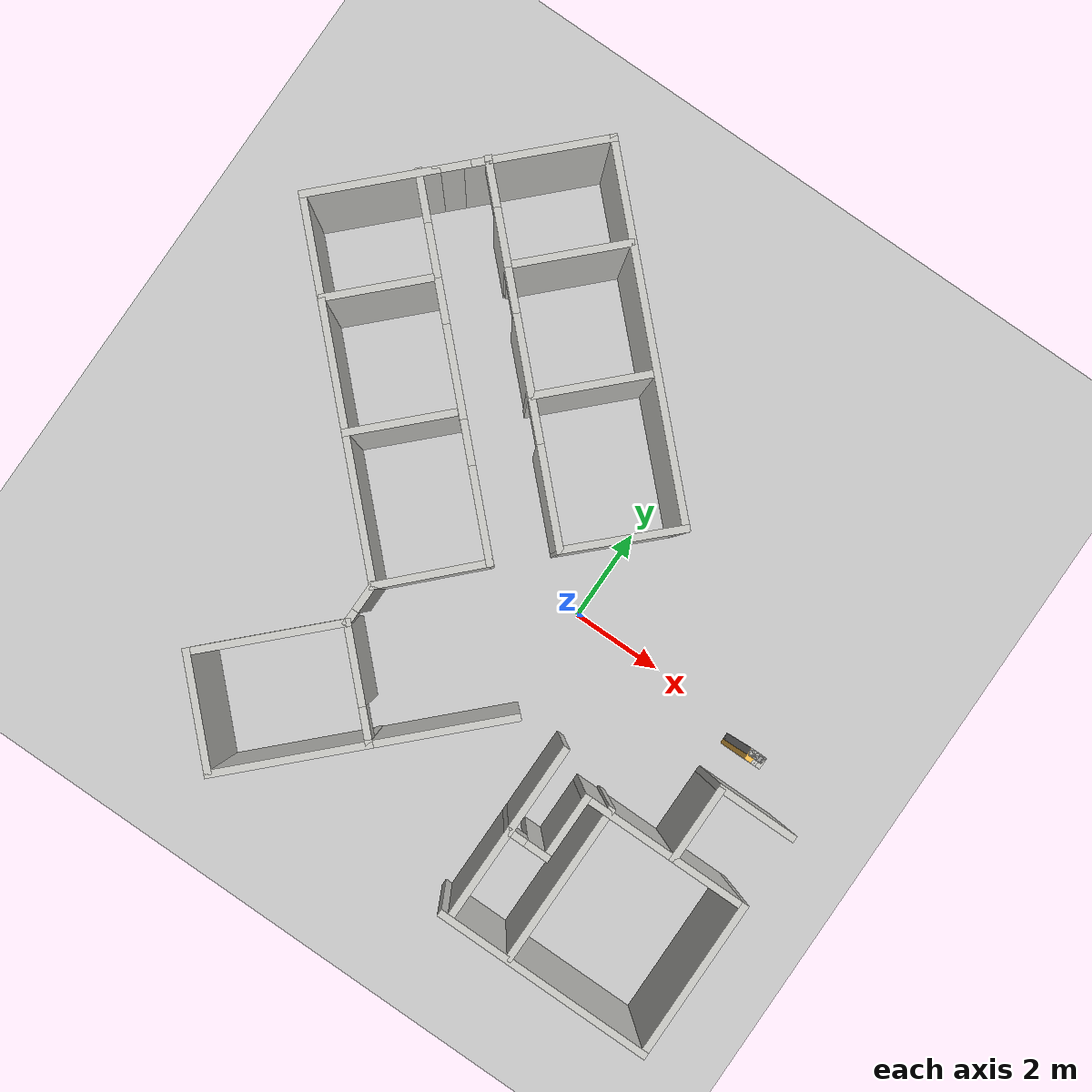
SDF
<sdf version="1.7">
 <world name="default">
  <model name="ground_plane">
   <static>1</static>
   <link name="link">
    <collision name="collision">
     <geometry><plane><normal>0 0 1</normal><size>100 100</size></plane></geometry>
     <surface>
      <contact><collide_bitmask>65535</collide_bitmask></contact>
      <friction><ode><mu>100</mu><mu2>50</mu2></ode></friction>
     </surface>
    </collision>
    <visual name="visual">
     <cast_shadows>0</cast_shadows>
     <geometry><plane><normal>0 0 1</normal><size>100 100</size></plane></geometry>
     <material>
      <script><uri>file://media/materials/scripts/gazebo.material</uri><name>Gazebo/Grey</name></script>
     </material>
    </visual>
   </link>
  </model>
  <model name="SUST_IICT">
   <pose>8.32781 0.748146 0 0 -0 0</pose>
   <link name="Wall_100">
    <collision name="Wall_100_Collision">
     <geometry><box><size>2.5 0.15 2.5</size></box></geometry>
     <pose>0 0 1.25 0 -0 0</pose>
    </collision>
    <visual name="Wall_100_Visual">
     <pose>0 0 1.25 0 -0 0</pose>
     <geometry><box><size>2.5 0.15 2.5</size></box></geometry>
     <material>
      <script><uri>file://media/materials/scripts/gazebo.material</uri><name>Gazebo/CeilingTiled</name></script>
      <ambient>1 0.764706 0.305882 1</ambient>
     </material>
     <meta><layer>0</layer></meta>
    </visual>
    <pose>-13.3631 -6.43541 0 0 -0 2.35619</pose>
   </link>
   <link name="Wall_102">
    <collision name="Wall_102_Collision">
     <geometry><box><size>3.25 0.15 2.5</size></box></geometry>
     <pose>0 0 1.25 0 -0 0</pose>
    </collision>
    <visual name="Wall_102_Visual">
     <pose>0 0 1.25 0 -0 0</pose>
     <geometry><box><size>3.25 0.15 2.5</size></box></geometry>
     <material>
      <script><uri>file://media/materials/scripts/gazebo.material</uri><name>Gazebo/CeilingTiled</name></script>
      <ambient>1 0.764706 0.305882 1</ambient>
     </material>
     <meta><layer>0</layer></meta>
    </visual>
    <pose>-13.098 -4.50854 0 0 -0 0.785398</pose>
   </link>
   <link name="Wall_118">
    <collision name="Wall_118_Collision">
     <geometry><box><size>4.75 0.15 2.5</size></box></geometry>
     <pose>0 0 1.25 0 -0 0</pose>
    </collision>
    <visual name="Wall_118_Visual">
     <pose>0 0 1.25 0 -0 0</pose>
     <geometry><box><size>4.75 0.15 2.5</size></box></geometry>
     <material>
      <script><uri>file://media/materials/scripts/gazebo.material</uri><name>Gazebo/CeilingTiled</name></script>
      <ambient>1 0.764706 0.305882 1</ambient>
     </material>
     <meta><layer>0</layer></meta>
    </visual>
    <pose>-5.075 -6.90897 0 0 -0 3.14159</pose>
   </link>
   <link name="Wall_128">
    <collision name="Wall_128_Collision">
     <geometry><box><size>2 0.15 2.5</size></box></geometry>
     <pose>0 0 1.25 0 -0 0</pose>
    </collision>
    <visual name="Wall_128_Visual">
     <pose>0 0 1.25 0 -0 0</pose>
     <geometry><box><size>2 0.15 2.5</size></box></geometry>
     <material>
      <script><uri>file://media/materials/scripts/gazebo.material</uri><name>Gazebo/CeilingTiled</name></script>
      <ambient>1 0.764706 0.305882 1</ambient>
     </material>
     <meta><layer>0</layer></meta>
    </visual>
    <pose>-7.225 -5.83397 0 0 -0 -1.5708</pose>
   </link>
   <link name="Wall_176">
    <collision name="Wall_176_Collision">
     <geometry><box><size>0.25 0.15 2.5</size></box></geometry>
     <pose>0 0 1.25 0 -0 0</pose>
    </collision>
    <visual name="Wall_176_Visual">
     <pose>0 0 1.25 0 -0 0</pose>
     <geometry><box><size>0.25 0.15 2.5</size></box></geometry>
     <material>
      <script><uri>file://media/materials/scripts/gazebo.material</uri><name>Gazebo/Grey</name></script>
      <ambient>1 0.764706 0.305882 1</ambient>
     </material>
     <meta><layer>0</layer></meta>
    </visual>
    <pose>-4.27904 -1.12473 0 0 -0 -1.5708</pose>
   </link>
   <link name="Wall_180">
    <collision name="Wall_180_Collision">
     <geometry><box><size>0.25 0.15 2.5</size></box></geometry>
     <pose>0 0 1.25 0 -0 0</pose>
    </collision>
    <visual name="Wall_180_Visual">
     <pose>0 0 1.25 0 -0 0</pose>
     <geometry><box><size>0.25 0.15 2.5</size></box></geometry>
     <material>
      <script><uri>file://media/materials/scripts/gazebo.material</uri><name>Gazebo/CeilingTiled</name></script>
      <ambient>1 1 1 1</ambient>
     </material>
     <meta><layer>0</layer></meta>
    </visual>
    <pose>-4.22905 -1.07473 0 0 -0 0</pose>
   </link>
   <link name="Wall_181">
    <collision name="Wall_181_Collision">
     <geometry><box><size>0.25 0.15 2.5</size></box></geometry>
     <pose>0 0 1.25 0 -0 0</pose>
    </collision>
    <visual name="Wall_181_Visual">
     <pose>0 0 1.25 0 -0 0</pose>
     <geometry><box><size>0.25 0.15 2.5</size></box></geometry>
     <material>
      <script><uri>file://media/materials/scripts/gazebo.material</uri><name>Gazebo/Grey</name></script>
      <ambient>1 1 1 1</ambient>
     </material>
     <meta><layer>0</layer></meta>
    </visual>
    <pose>-4.22905 -1.07473 0 0 -0 3.14159</pose>
   </link>
   <link name="Wall_183">
    <collision name="Wall_183_Collision">
     <geometry><box><size>0.25 0.15 2.5</size></box></geometry>
     <pose>0 0 1.25 0 -0 0</pose>
    </collision>
    <visual name="Wall_183_Visual">
     <pose>0 0 1.25 0 -0 0</pose>
     <geometry><box><size>0.25 0.15 2.5</size></box></geometry>
     <material>
      <script><uri>file://media/materials/scripts/gazebo.material</uri><name>Gazebo/CeilingTiled</name></script>
      <ambient>0.996078 0.47451 0.0196078 1</ambient>
     </material>
     <meta><layer>0</layer></meta>
    </visual>
    <pose>-4.22905 -1.07473 0 0 -0 3.14159</pose>
   </link>
   <link name="Wall_185">
    <collision name="Wall_185_Collision">
     <geometry><box><size>0.25 0.15 2.5</size></box></geometry>
     <pose>0 0 1.25 0 -0 0</pose>
    </collision>
    <visual name="Wall_185_Visual">
     <pose>0 0 1.25 0 -0 0</pose>
     <geometry><box><size>0.25 0.15 2.5</size></box></geometry>
     <material>
      <script><uri>file://media/materials/scripts/gazebo.material</uri><name>Gazebo/CeilingTiled</name></script>
      <ambient>1 0.764706 0.305882 1</ambient>
     </material>
     <meta><layer>0</layer></meta>
    </visual>
    <pose>-4.17905 -1.12473 0 0 -0 -1.5708</pose>
   </link>
   <link name="Wall_199">
    <collision name="Wall_199_Collision">
     <geometry><box><size>0.25 0.15 2.5</size></box></geometry>
     <pose>0 0 1.25 0 -0 0</pose>
    </collision>
    <visual name="Wall_199_Visual">
     <pose>0 0 1.25 0 -0 0</pose>
     <geometry><box><size>0.25 0.15 2.5</size></box></geometry>
     <material>
      <script><uri>file://media/materials/scripts/gazebo.material</uri><name>Gazebo/Grey</name></script>
      <ambient>1 1 1 1</ambient>
     </material>
     <meta><layer>0</layer></meta>
    </visual>
    <pose>-4.12904 -1.07473 0 0 -0 0</pose>
   </link>
   <link name="Wall_200">
    <collision name="Wall_200_Collision">
     <geometry><box><size>0.25 0.15 2.5</size></box></geometry>
     <pose>0 0 1.25 0 -0 0</pose>
    </collision>
    <visual name="Wall_200_Visual">
     <pose>0 0 1.25 0 -0 0</pose>
     <geometry><box><size>0.25 0.15 2.5</size></box></geometry>
     <material>
      <script><uri>file://media/materials/scripts/gazebo.material</uri><name>Gazebo/Grey</name></script>
      <ambient>1 1 1 1</ambient>
     </material>
     <meta><layer>0</layer></meta>
    </visual>
    <pose>-4.12904 -1.07473 0 0 -0 3.14159</pose>
   </link>
   <link name="Wall_201">
    <collision name="Wall_201_Collision">
     <geometry><box><size>0.25 0.15 2.5</size></box></geometry>
     <pose>0 0 1.25 0 -0 0</pose>
    </collision>
    <visual name="Wall_201_Visual">
     <pose>0 0 1.25 0 -0 0</pose>
     <geometry><box><size>0.25 0.15 2.5</size></box></geometry>
     <material>
      <script><uri>file://media/materials/scripts/gazebo.material</uri><name>Gazebo/Wood</name></script>
      <ambient>1 0.764706 0.305882 1</ambient>
     </material>
     <meta><layer>0</layer></meta>
    </visual>
    <pose>-4.12904 -1.07473 0 0 -0 0</pose>
   </link>
   <link name="Wall_202">
    <collision name="Wall_202_Collision">
     <geometry><box><size>0.25 0.15 2.5</size></box></geometry>
     <pose>0 0 1.25 0 -0 0</pose>
    </collision>
    <visual name="Wall_202_Visual">
     <pose>0 0 1.25 0 -0 0</pose>
     <geometry><box><size>0.25 0.15 2.5</size></box></geometry>
     <material>
      <script><uri>file://media/materials/scripts/gazebo.material</uri><name>Gazebo/Grey</name></script>
      <ambient>1 1 1 1</ambient>
     </material>
     <meta><layer>0</layer></meta>
    </visual>
    <pose>-4.12904 -1.07473 0 0 -0 3.14159</pose>
   </link>
   <link name="Wall_204">
    <collision name="Wall_204_Collision">
     <geometry><box><size>0.25 0.15 2.5</size></box></geometry>
     <pose>0 0 1.25 0 -0 0</pose>
    </collision>
    <visual name="Wall_204_Visual">
     <pose>0 0 1.25 0 -0 0</pose>
     <geometry><box><size>0.25 0.15 2.5</size></box></geometry>
     <material>
      <script><uri>file://media/materials/scripts/gazebo.material</uri><name>Gazebo/CeilingTiled</name></script>
      <ambient>1 0.764706 0.305882 1</ambient>
     </material>
     <meta><layer>0</layer></meta>
    </visual>
    <pose>-4.12904 -1.07473 0 0 -0 3.14159</pose>
   </link>
   <link name="Wall_206">
    <collision name="Wall_206_Collision">
     <geometry><box><size>0.25 0.15 2.5</size></box></geometry>
     <pose>0 0 1.25 0 -0 0</pose>
    </collision>
    <visual name="Wall_206_Visual">
     <pose>0 0 1.25 0 -0 0</pose>
     <geometry><box><size>0.25 0.15 2.5</size></box></geometry>
     <material>
      <script><uri>file://media/materials/scripts/gazebo.material</uri><name>Gazebo/CeilingTiled</name></script>
      <ambient>1 0.764706 0.305882 1</ambient>
     </material>
     <meta><layer>0</layer></meta>
    </visual>
    <pose>-4.07904 -1.12473 0 0 -0 -1.5708</pose>
   </link>
   <link name="Wall_234">
    <pose>-13.1094 1.74026 0 0 -0 2.35619</pose>
    <visual name="Wall_234_Visual_0">
     <pose>-2.89633 0 1.25 0 -0 0</pose>
     <geometry><box><size>1.95734 0.15 2.5</size></box></geometry>
     <material>
      <script><uri>file://media/materials/scripts/gazebo.material</uri><name>Gazebo/CeilingTiled</name></script>
      <ambient>1 0.764706 0.305882 1</ambient>
     </material>
     <meta><layer>0</layer></meta>
    </visual>
    <collision name="Wall_234_Collision_0">
     <geometry><box><size>1.95734 0.15 2.5</size></box></geometry>
     <pose>-2.89633 0 1.25 0 -0 0</pose>
    </collision>
    <visual name="Wall_234_Visual_1">
     <pose>-0.094591 0 1.25 0 -0 0</pose>
     <geometry><box><size>1.84614 0.15 2.5</size></box></geometry>
     <material>
      <script><uri>file://media/materials/scripts/gazebo.material</uri><name>Gazebo/CeilingTiled</name></script>
      <ambient>1 0.764706 0.305882 1</ambient>
     </material>
     <meta><layer>0</layer></meta>
    </visual>
    <collision name="Wall_234_Collision_1">
     <geometry><box><size>1.84614 0.15 2.5</size></box></geometry>
     <pose>-0.094591 0 1.25 0 -0 0</pose>
    </collision>
    <visual name="Wall_234_Visual_2">
     <pose>2.26596 0 1.25 0 -0 0</pose>
     <geometry><box><size>1.07496 0.15 2.5</size></box></geometry>
     <material>
      <script><uri>file://media/materials/scripts/gazebo.material</uri><name>Gazebo/CeilingTiled</name></script>
      <ambient>1 0.764706 0.305882 1</ambient>
     </material>
     <meta><layer>0</layer></meta>
    </visual>
    <collision name="Wall_234_Collision_2">
     <geometry><box><size>1.07496 0.15 2.5</size></box></geometry>
     <pose>2.26596 0 1.25 0 -0 0</pose>
    </collision>
    <visual name="Wall_234_Visual_3">
     <pose>3.78922 0 1.25 0 -0 0</pose>
     <geometry><box><size>0.171557 0.15 2.5</size></box></geometry>
     <material>
      <script><uri>file://media/materials/scripts/gazebo.material</uri><name>Gazebo/CeilingTiled</name></script>
      <ambient>1 0.764706 0.305882 1</ambient>
     </material>
     <meta><layer>0</layer></meta>
    </visual>
    <collision name="Wall_234_Collision_3">
     <geometry><box><size>0.171557 0.15 2.5</size></box></geometry>
     <pose>3.78922 0 1.25 0 -0 0</pose>
    </collision>
    <visual name="Wall_234_Visual_4">
     <pose>-1.46766 0 2.25 0 -0 0</pose>
     <geometry><box><size>0.9 0.15 0.5</size></box></geometry>
     <material>
      <script><uri>file://media/materials/scripts/gazebo.material</uri><name>Gazebo/CeilingTiled</name></script>
      <ambient>1 0.764706 0.305882 1</ambient>
     </material>
     <meta><layer>0</layer></meta>
    </visual>
    <collision name="Wall_234_Collision_4">
     <geometry><box><size>0.9 0.15 0.5</size></box></geometry>
     <pose>-1.46766 0 2.25 0 -0 0</pose>
    </collision>
    <visual name="Wall_234_Visual_5">
     <pose>1.27848 0 2.25 0 -0 0</pose>
     <geometry><box><size>0.9 0.15 0.5</size></box></geometry>
     <material>
      <script><uri>file://media/materials/scripts/gazebo.material</uri><name>Gazebo/CeilingTiled</name></script>
      <ambient>1 0.764706 0.305882 1</ambient>
     </material>
     <meta><layer>0</layer></meta>
    </visual>
    <collision name="Wall_234_Collision_5">
     <geometry><box><size>0.9 0.15 0.5</size></box></geometry>
     <pose>1.27848 0 2.25 0 -0 0</pose>
    </collision>
    <visual name="Wall_234_Visual_6">
     <pose>3.25344 0 2.25 0 -0 0</pose>
     <geometry><box><size>0.9 0.15 0.5</size></box></geometry>
     <material>
      <script><uri>file://media/materials/scripts/gazebo.material</uri><name>Gazebo/CeilingTiled</name></script>
      <ambient>1 0.764706 0.305882 1</ambient>
     </material>
     <meta><layer>0</layer></meta>
    </visual>
    <collision name="Wall_234_Collision_6">
     <geometry><box><size>0.9 0.15 0.5</size></box></geometry>
     <pose>3.25344 0 2.25 0 -0 0</pose>
    </collision>
   </link>
   <link name="Wall_236">
    <pose>-12.1518 2.69786 0 0 -0 2.35619</pose>
    <visual name="Wall_236_Visual_0">
     <pose>-2.81169 0 1.25 0 -0 0</pose>
     <geometry><box><size>2.12662 0.15 2.5</size></box></geometry>
     <material>
      <script><uri>file://media/materials/scripts/gazebo.material</uri><name>Gazebo/CeilingTiled</name></script>
      <ambient>1 0.764706 0.305882 1</ambient>
     </material>
     <meta><layer>0</layer></meta>
    </visual>
    <collision name="Wall_236_Collision_0">
     <geometry><box><size>2.12662 0.15 2.5</size></box></geometry>
     <pose>-2.81169 0 1.25 0 -0 0</pose>
    </collision>
    <visual name="Wall_236_Visual_1">
     <pose>-0.028759 0 1.25 0 -0 0</pose>
     <geometry><box><size>1.63924 0.15 2.5</size></box></geometry>
     <material>
      <script><uri>file://media/materials/scripts/gazebo.material</uri><name>Gazebo/CeilingTiled</name></script>
      <ambient>1 0.764706 0.305882 1</ambient>
     </material>
     <meta><layer>0</layer></meta>
    </visual>
    <collision name="Wall_236_Collision_1">
     <geometry><box><size>1.63924 0.15 2.5</size></box></geometry>
     <pose>-0.028759 0 1.25 0 -0 0</pose>
    </collision>
    <visual name="Wall_236_Visual_2">
     <pose>2.27537 0 1.25 0 -0 0</pose>
     <geometry><box><size>1.16901 0.15 2.5</size></box></geometry>
     <material>
      <script><uri>file://media/materials/scripts/gazebo.material</uri><name>Gazebo/CeilingTiled</name></script>
      <ambient>1 0.764706 0.305882 1</ambient>
     </material>
     <meta><layer>0</layer></meta>
    </visual>
    <collision name="Wall_236_Collision_2">
     <geometry><box><size>1.16901 0.15 2.5</size></box></geometry>
     <pose>2.27537 0 1.25 0 -0 0</pose>
    </collision>
    <visual name="Wall_236_Visual_3">
     <pose>3.81744 0 1.25 0 -0 0</pose>
     <geometry><box><size>0.115129 0.15 2.5</size></box></geometry>
     <material>
      <script><uri>file://media/materials/scripts/gazebo.material</uri><name>Gazebo/CeilingTiled</name></script>
      <ambient>1 0.764706 0.305882 1</ambient>
     </material>
     <meta><layer>0</layer></meta>
    </visual>
    <collision name="Wall_236_Collision_3">
     <geometry><box><size>0.115129 0.15 2.5</size></box></geometry>
     <pose>3.81744 0 1.25 0 -0 0</pose>
    </collision>
    <visual name="Wall_236_Visual_4">
     <pose>-1.29838 0 2.25 0 -0 0</pose>
     <geometry><box><size>0.9 0.15 0.5</size></box></geometry>
     <material>
      <script><uri>file://media/materials/scripts/gazebo.material</uri><name>Gazebo/CeilingTiled</name></script>
      <ambient>1 0.764706 0.305882 1</ambient>
     </material>
     <meta><layer>0</layer></meta>
    </visual>
    <collision name="Wall_236_Collision_4">
     <geometry><box><size>0.9 0.15 0.5</size></box></geometry>
     <pose>-1.29838 0 2.25 0 -0 0</pose>
    </collision>
    <visual name="Wall_236_Visual_5">
     <pose>1.24086 0 2.25 0 -0 0</pose>
     <geometry><box><size>0.9 0.15 0.5</size></box></geometry>
     <material>
      <script><uri>file://media/materials/scripts/gazebo.material</uri><name>Gazebo/CeilingTiled</name></script>
      <ambient>1 0.764706 0.305882 1</ambient>
     </material>
     <meta><layer>0</layer></meta>
    </visual>
    <collision name="Wall_236_Collision_5">
     <geometry><box><size>0.9 0.15 0.5</size></box></geometry>
     <pose>1.24086 0 2.25 0 -0 0</pose>
    </collision>
    <visual name="Wall_236_Visual_6">
     <pose>3.30987 0 2.25 0 -0 0</pose>
     <geometry><box><size>0.9 0.15 0.5</size></box></geometry>
     <material>
      <script><uri>file://media/materials/scripts/gazebo.material</uri><name>Gazebo/CeilingTiled</name></script>
      <ambient>1 0.764706 0.305882 1</ambient>
     </material>
     <meta><layer>0</layer></meta>
    </visual>
    <collision name="Wall_236_Collision_6">
     <geometry><box><size>0.9 0.15 0.5</size></box></geometry>
     <pose>3.30987 0 2.25 0 -0 0</pose>
    </collision>
   </link>
   <link name="Wall_238">
    <collision name="Wall_238_Collision">
     <geometry><box><size>2.4096 0.15 2.5</size></box></geometry>
     <pose>0 0 1.25 0 -0 0</pose>
    </collision>
    <visual name="Wall_238_Visual">
     <pose>0 0 1.25 0 -0 0</pose>
     <geometry><box><size>2.4096 0.15 2.5</size></box></geometry>
     <material>
      <script><uri>file://media/materials/scripts/gazebo.material</uri><name>Gazebo/CeilingTiled</name></script>
      <ambient>1 0.764706 0.305882 1</ambient>
     </material>
     <meta><layer>0</layer></meta>
    </visual>
    <pose>-11.2122 -1.75464 0 0 -0 0.796729</pose>
   </link>
   <link name="Wall_240">
    <collision name="Wall_240_Collision">
     <geometry><box><size>2.58642 0.15 2.5</size></box></geometry>
     <pose>0 0 1.25 0 -0 0</pose>
    </collision>
    <visual name="Wall_240_Visual">
     <pose>0 0 1.25 0 -0 0</pose>
     <geometry><box><size>2.58642 0.15 2.5</size></box></geometry>
     <material>
      <script><uri>file://media/materials/scripts/gazebo.material</uri><name>Gazebo/CeilingTiled</name></script>
      <ambient>1 0.764706 0.305882 1</ambient>
     </material>
     <meta><layer>0</layer></meta>
    </visual>
    <pose>-8.59437 0.863164 0 0 -0 0.77489</pose>
   </link>
   <link name="Wall_244">
    <collision name="Wall_244_Collision">
     <geometry><box><size>3.5 0.15 2.5</size></box></geometry>
     <pose>0 0 1.25 0 -0 0</pose>
    </collision>
    <visual name="Wall_244_Visual">
     <pose>0 0 1.25 0 -0 0</pose>
     <geometry><box><size>3.5 0.15 2.5</size></box></geometry>
     <material>
      <script><uri>file://media/materials/scripts/gazebo.material</uri><name>Gazebo/CeilingTiled</name></script>
      <ambient>1 0.764706 0.305882 1</ambient>
     </material>
     <meta><layer>0</layer></meta>
    </visual>
    <pose>-5.87375 -5.17537 0 0 -0 -1.5708</pose>
   </link>
   <link name="Wall_268">
    <collision name="Wall_268_Collision">
     <geometry><box><size>2.25 0.15 2.5</size></box></geometry>
     <pose>0 0 1.25 0 -0 0</pose>
    </collision>
    <visual name="Wall_268_Visual">
     <pose>0 0 1.25 0 -0 0</pose>
     <geometry><box><size>2.25 0.15 2.5</size></box></geometry>
     <material>
      <script><uri>file://media/materials/scripts/gazebo.material</uri><name>Gazebo/CeilingTiled</name></script>
      <ambient>1 0.764706 0.305882 1</ambient>
     </material>
     <meta><layer>0</layer></meta>
    </visual>
    <pose>-13.3508 0.274517 0 0 -0 0.785398</pose>
   </link>
   <link name="Wall_270">
    <collision name="Wall_270_Collision">
     <geometry><box><size>2.5 0.15 2.5</size></box></geometry>
     <pose>0 0 1.25 0 -0 0</pose>
    </collision>
    <visual name="Wall_270_Visual">
     <pose>0 0 1.25 0 -0 0</pose>
     <geometry><box><size>2.5 0.15 2.5</size></box></geometry>
     <material>
      <script><uri>file://media/materials/scripts/gazebo.material</uri><name>Gazebo/CeilingTiled</name></script>
      <ambient>1 0.764706 0.305882 1</ambient>
     </material>
     <meta><layer>0</layer></meta>
    </visual>
    <pose>-10.7619 2.94312 0 0 -0 0.785398</pose>
   </link>
   <link name="Wall_272">
    <collision name="Wall_272_Collision">
     <geometry><box><size>2.5 0.15 2.5</size></box></geometry>
     <pose>0 0 1.25 0 -0 0</pose>
    </collision>
    <visual name="Wall_272_Visual">
     <pose>0 0 1.25 0 -0 0</pose>
     <geometry><box><size>2.5 0.15 2.5</size></box></geometry>
     <material>
      <script><uri>file://media/materials/scripts/gazebo.material</uri><name>Gazebo/CeilingTiled</name></script>
      <ambient>1 0.764706 0.305882 1</ambient>
     </material>
     <meta><layer>0</layer></meta>
    </visual>
    <pose>-12.5176 4.77854 0 0 -0 0.785398</pose>
   </link>
   <link name="Wall_274">
    <collision name="Wall_274_Collision">
     <geometry><box><size>2.25 0.15 2.5</size></box></geometry>
     <pose>0 0 1.25 0 -0 0</pose>
    </collision>
    <visual name="Wall_274_Visual">
     <pose>0 0 1.25 0 -0 0</pose>
     <geometry><box><size>2.25 0.15 2.5</size></box></geometry>
     <material>
      <script><uri>file://media/materials/scripts/gazebo.material</uri><name>Gazebo/CeilingTiled</name></script>
      <ambient>1 0.764706 0.305882 1</ambient>
     </material>
     <meta><layer>0</layer></meta>
    </visual>
    <pose>-15.1862 2.13653 0 0 -0 0.785398</pose>
   </link>
   <link name="Wall_39">
    <collision name="Wall_39_Collision">
     <geometry><box><size>3.5 0.15 2.5</size></box></geometry>
     <pose>0 0 1.25 0 -0 0</pose>
    </collision>
    <visual name="Wall_39_Visual">
     <pose>0 0 1.25 0 -0 0</pose>
     <geometry><box><size>3.5 0.15 2.5</size></box></geometry>
     <material>
      <script><uri>file://media/materials/scripts/gazebo.material</uri><name>Gazebo/CeilingTiled</name></script>
      <ambient>1 0.764706 0.305882 1</ambient>
     </material>
     <meta><layer>0</layer></meta>
    </visual>
    <pose>-2.775 -5.23397 0 0 -0 1.5708</pose>
   </link>
   <link name="Wall_40">
    <collision name="Wall_40_Collision">
     <geometry><box><size>3.75 0.15 2.5</size></box></geometry>
     <pose>0 0 1.25 0 -0 0</pose>
    </collision>
    <visual name="Wall_40_Visual">
     <pose>0 0 1.25 0 -0 0</pose>
     <geometry><box><size>3.75 0.15 2.5</size></box></geometry>
     <material>
      <script><uri>file://media/materials/scripts/gazebo.material</uri><name>Gazebo/CeilingTiled</name></script>
      <ambient>1 0.764706 0.305882 1</ambient>
     </material>
     <meta><layer>0</layer></meta>
    </visual>
    <pose>-4.575 -3.55897 0 0 -0 3.14159</pose>
   </link>
   <link name="Wall_41">
    <collision name="Wall_41_Collision">
     <geometry><box><size>1.5 0.15 2.5</size></box></geometry>
     <pose>0 0 1.25 0 -0 0</pose>
    </collision>
    <visual name="Wall_41_Visual">
     <pose>0 0 1.25 0 -0 0</pose>
     <geometry><box><size>1.5 0.15 2.5</size></box></geometry>
     <material>
      <script><uri>file://media/materials/scripts/gazebo.material</uri><name>Gazebo/CeilingTiled</name></script>
      <ambient>1 0.764706 0.305882 1</ambient>
     </material>
     <meta><layer>0</layer></meta>
    </visual>
    <pose>-6.375 -4.23397 0 0 -0 -1.5708</pose>
   </link>
   <link name="Wall_42">
    <pose>-6.8 -4.90897 0 0 -0 3.14159</pose>
    <visual name="Wall_42_Visual_0">
     <pose>-0.226569 0 1.25 0 -0 0</pose>
     <geometry><box><size>0.546863 0.15 2.5</size></box></geometry>
     <material>
      <script><uri>file://media/materials/scripts/gazebo.material</uri><name>Gazebo/CeilingTiled</name></script>
      <ambient>1 0.764706 0.305882 1</ambient>
     </material>
     <meta><layer>0</layer></meta>
    </visual>
    <collision name="Wall_42_Collision_0">
     <geometry><box><size>0.546863 0.15 2.5</size></box></geometry>
     <pose>-0.226569 0 1.25 0 -0 0</pose>
    </collision>
    <visual name="Wall_42_Visual_1">
     <pose>0.457429 0 1.25 0 -0 0</pose>
     <geometry><box><size>0.085141 0.15 2.5</size></box></geometry>
     <material>
      <script><uri>file://media/materials/scripts/gazebo.material</uri><name>Gazebo/CeilingTiled</name></script>
      <ambient>1 0.764706 0.305882 1</ambient>
     </material>
     <meta><layer>0</layer></meta>
    </visual>
    <collision name="Wall_42_Collision_1">
     <geometry><box><size>0.085141 0.15 2.5</size></box></geometry>
     <pose>0.457429 0 1.25 0 -0 0</pose>
    </collision>
    <visual name="Wall_42_Visual_2">
     <pose>0.230861 0 2.25 0 -0 0</pose>
     <geometry><box><size>0.367996 0.15 0.5</size></box></geometry>
     <material>
      <script><uri>file://media/materials/scripts/gazebo.material</uri><name>Gazebo/CeilingTiled</name></script>
      <ambient>1 0.764706 0.305882 1</ambient>
     </material>
     <meta><layer>0</layer></meta>
    </visual>
    <collision name="Wall_42_Collision_2">
     <geometry><box><size>0.367996 0.15 0.5</size></box></geometry>
     <pose>0.230861 0 2.25 0 -0 0</pose>
    </collision>
   </link>
   <link name="Wall_43">
    <collision name="Wall_43_Collision">
     <geometry><box><size>2 0.15 2.5</size></box></geometry>
     <pose>0 0 1.25 0 -0 0</pose>
    </collision>
    <visual name="Wall_43_Visual">
     <pose>0 0 1.25 0 -0 0</pose>
     <geometry><box><size>2 0.15 2.5</size></box></geometry>
     <material>
      <script><uri>file://media/materials/scripts/gazebo.material</uri><name>Gazebo/CeilingTiled</name></script>
      <ambient>1 0.764706 0.305882 1</ambient>
     </material>
     <meta><layer>0</layer></meta>
    </visual>
    <pose>-7.225 -3.98397 0 0 -0 1.5708</pose>
   </link>
   <link name="Wall_51">
    <collision name="Wall_51_Collision">
     <geometry><box><size>3 0.15 2.5</size></box></geometry>
     <pose>0 0 1.25 0 -0 0</pose>
    </collision>
    <visual name="Wall_51_Visual">
     <pose>0 0 1.25 0 -0 0</pose>
     <geometry><box><size>3 0.15 2.5</size></box></geometry>
     <material>
      <script><uri>file://media/materials/scripts/gazebo.material</uri><name>Gazebo/CeilingTiled</name></script>
      <ambient>1 0.764706 0.305882 1</ambient>
     </material>
     <meta><layer>0</layer></meta>
    </visual>
    <pose>-9.33263 -4.0666 0 0 -0 -2.35619</pose>
   </link>
   <link name="Wall_52">
    <pose>-11.1711 -4.24338 0 0 -0 2.35619</pose>
    <visual name="Wall_52_Visual_0">
     <pose>-1.16707 0 1.25 0 -0 0</pose>
     <geometry><box><size>0.165854 0.15 2.5</size></box></geometry>
     <material>
      <script><uri>file://media/materials/scripts/gazebo.material</uri><name>Gazebo/CeilingTiled</name></script>
      <ambient>1 0.764706 0.305882 1</ambient>
     </material>
     <meta><layer>0</layer></meta>
    </visual>
    <collision name="Wall_52_Collision_0">
     <geometry><box><size>0.165854 0.15 2.5</size></box></geometry>
     <pose>-1.16707 0 1.25 0 -0 0</pose>
    </collision>
    <visual name="Wall_52_Visual_1">
     <pose>0.401263 0 1.25 0 -0 0</pose>
     <geometry><box><size>1.69748 0.15 2.5</size></box></geometry>
     <material>
      <script><uri>file://media/materials/scripts/gazebo.material</uri><name>Gazebo/CeilingTiled</name></script>
      <ambient>1 0.764706 0.305882 1</ambient>
     </material>
     <meta><layer>0</layer></meta>
    </visual>
    <collision name="Wall_52_Collision_1">
     <geometry><box><size>1.69748 0.15 2.5</size></box></geometry>
     <pose>0.401263 0 1.25 0 -0 0</pose>
    </collision>
    <visual name="Wall_52_Visual_2">
     <pose>-0.76581 0 2.25 0 -0 0</pose>
     <geometry><box><size>0.636671 0.15 0.5</size></box></geometry>
     <material>
      <script><uri>file://media/materials/scripts/gazebo.material</uri><name>Gazebo/CeilingTiled</name></script>
      <ambient>1 0.764706 0.305882 1</ambient>
     </material>
     <meta><layer>0</layer></meta>
    </visual>
    <collision name="Wall_52_Collision_2">
     <geometry><box><size>0.636671 0.15 0.5</size></box></geometry>
     <pose>-0.76581 0 2.25 0 -0 0</pose>
    </collision>
   </link>
   <link name="Wall_53">
    <pose>-12.002 -2.98753 0 0 -0 1.5708</pose>
    <visual name="Wall_53_Visual_0">
     <pose>-0.498669 0 1.25 0 -0 0</pose>
     <geometry><box><size>0.002661 0.15 2.5</size></box></geometry>
     <material>
      <script><uri>file://media/materials/scripts/gazebo.material</uri><name>Gazebo/CeilingTiled</name></script>
      <ambient>1 0.764706 0.305882 1</ambient>
     </material>
     <meta><layer>0</layer></meta>
    </visual>
    <collision name="Wall_53_Collision_0">
     <geometry><box><size>0.002661 0.15 2.5</size></box></geometry>
     <pose>-0.498669 0 1.25 0 -0 0</pose>
    </collision>
    <visual name="Wall_53_Visual_1">
     <pose>0.172028 0 1.25 0 -0 0</pose>
     <geometry><box><size>0.655943 0.15 2.5</size></box></geometry>
     <material>
      <script><uri>file://media/materials/scripts/gazebo.material</uri><name>Gazebo/CeilingTiled</name></script>
      <ambient>1 0.764706 0.305882 1</ambient>
     </material>
     <meta><layer>0</layer></meta>
    </visual>
    <collision name="Wall_53_Collision_1">
     <geometry><box><size>0.655943 0.15 2.5</size></box></geometry>
     <pose>0.172028 0 1.25 0 -0 0</pose>
    </collision>
    <visual name="Wall_53_Visual_2">
     <pose>-0.326641 0 2.25 0 -0 0</pose>
     <geometry><box><size>0.341396 0.15 0.5</size></box></geometry>
     <material>
      <script><uri>file://media/materials/scripts/gazebo.material</uri><name>Gazebo/CeilingTiled</name></script>
      <ambient>1 0.764706 0.305882 1</ambient>
     </material>
     <meta><layer>0</layer></meta>
    </visual>
    <collision name="Wall_53_Collision_2">
     <geometry><box><size>0.341396 0.15 0.5</size></box></geometry>
     <pose>-0.326641 0 2.25 0 -0 0</pose>
    </collision>
   </link>
   <link name="Wall_63">
    <collision name="Wall_63_Collision">
     <geometry><box><size>0.75 0.15 2.5</size></box></geometry>
     <pose>0 0 1.25 0 -0 0</pose>
    </collision>
    <visual name="Wall_63_Visual">
     <pose>0 0 1.25 0 -0 0</pose>
     <geometry><box><size>0.75 0.15 2.5</size></box></geometry>
     <material>
      <script><uri>file://media/materials/scripts/gazebo.material</uri><name>Gazebo/CeilingTiled</name></script>
      <ambient>1 0.764706 0.305882 1</ambient>
     </material>
     <meta><layer>0</layer></meta>
    </visual>
    <pose>-15.3254 4.8621 0 0 -0 0.785398</pose>
   </link>
   <link name="Wall_71">
    <collision name="Wall_71_Collision">
     <geometry><box><size>1.75 0.15 2.5</size></box></geometry>
     <pose>0 0 1.25 0 -0 0</pose>
    </collision>
    <visual name="Wall_71_Visual">
     <pose>0 0 1.25 0 -0 0</pose>
     <geometry><box><size>1.75 0.15 2.5</size></box></geometry>
     <material>
      <script><uri>file://media/materials/scripts/gazebo.material</uri><name>Gazebo/CeilingTiled</name></script>
      <ambient>1 0.764706 0.305882 1</ambient>
     </material>
     <meta><layer>0</layer></meta>
    </visual>
    <pose>-3.575 -1.95897 0 0 -0 3.14159</pose>
   </link>
   <link name="Wall_72">
    <collision name="Wall_72_Collision">
     <geometry><box><size>1.75 0.15 2.5</size></box></geometry>
     <pose>0 0 1.25 0 -0 0</pose>
    </collision>
    <visual name="Wall_72_Visual">
     <pose>0 0 1.25 0 -0 0</pose>
     <geometry><box><size>1.75 0.15 2.5</size></box></geometry>
     <material>
      <script><uri>file://media/materials/scripts/gazebo.material</uri><name>Gazebo/CeilingTiled</name></script>
      <ambient>1 0.764706 0.305882 1</ambient>
     </material>
     <meta><layer>0</layer></meta>
    </visual>
    <pose>-4.375 -2.75897 0 0 -0 -1.5708</pose>
   </link>
   <link name="Wall_82">
    <collision name="Wall_82_Collision">
     <geometry><box><size>7.75 0.15 2.5</size></box></geometry>
     <pose>0 0 1.25 0 -0 0</pose>
    </collision>
    <visual name="Wall_82_Visual">
     <pose>0 0 1.25 0 -0 0</pose>
     <geometry><box><size>7.75 0.15 2.5</size></box></geometry>
     <material>
      <script><uri>file://media/materials/scripts/gazebo.material</uri><name>Gazebo/CeilingTiled</name></script>
      <ambient>1 0.764706 0.305882 1</ambient>
     </material>
     <meta><layer>0</layer></meta>
    </visual>
    <pose>-14.689 0.12448 0 0 -0 2.35619</pose>
   </link>
   <link name="Wall_83">
    <collision name="Wall_83_Collision">
     <geometry><box><size>2.75 0.15 2.5</size></box></geometry>
     <pose>0 0 1.25 0 -0 0</pose>
    </collision>
    <visual name="Wall_83_Visual">
     <pose>0 0 1.25 0 -0 0</pose>
     <geometry><box><size>2.75 0.15 2.5</size></box></geometry>
     <material>
      <script><uri>file://media/materials/scripts/gazebo.material</uri><name>Gazebo/CeilingTiled</name></script>
      <ambient>1 0.764706 0.305882 1</ambient>
     </material>
     <meta><layer>0</layer></meta>
    </visual>
    <pose>-16.4567 3.73072 0 0 -0 0.785398</pose>
   </link>
   <link name="Wall_91">
    <collision name="Wall_91_Collision">
     <geometry><box><size>7.75 0.15 2.5</size></box></geometry>
     <pose>0 0 1.25 0 -0 0</pose>
    </collision>
    <visual name="Wall_91_Visual">
     <pose>0 0 1.25 0 -0 0</pose>
     <geometry><box><size>7.75 0.15 2.5</size></box></geometry>
     <material>
      <script><uri>file://media/materials/scripts/gazebo.material</uri><name>Gazebo/CeilingTiled</name></script>
      <ambient>1 0.764706 0.305882 1</ambient>
     </material>
     <meta><layer>0</layer></meta>
    </visual>
    <pose>-10.411 4.40248 0 0 -0 2.35619</pose>
   </link>
   <link name="Wall_92">
    <collision name="Wall_92_Collision">
     <geometry><box><size>3 0.15 2.5</size></box></geometry>
     <pose>0 0 1.25 0 -0 0</pose>
    </collision>
    <visual name="Wall_92_Visual">
     <pose>0 0 1.25 0 -0 0</pose>
     <geometry><box><size>3 0.15 2.5</size></box></geometry>
     <material>
      <script><uri>file://media/materials/scripts/gazebo.material</uri><name>Gazebo/CeilingTiled</name></script>
      <ambient>1 0.764706 0.305882 1</ambient>
     </material>
     <meta><layer>0</layer></meta>
    </visual>
    <pose>-14.1056 6.08185 0 0 -0 -2.35619</pose>
   </link>
   <link name="Wall_99">
    <collision name="Wall_99_Collision">
     <geometry><box><size>3.25 0.15 2.5</size></box></geometry>
     <pose>0 0 1.25 0 -0 0</pose>
    </collision>
    <visual name="Wall_99_Visual">
     <pose>0 0 1.25 0 -0 0</pose>
     <geometry><box><size>3.25 0.15 2.5</size></box></geometry>
     <material>
      <script><uri>file://media/materials/scripts/gazebo.material</uri><name>Gazebo/CeilingTiled</name></script>
      <ambient>1 0.764706 0.305882 1</ambient>
     </material>
     <meta><layer>0</layer></meta>
    </visual>
    <pose>-11.4363 -6.17024 0 0 -0 -2.35619</pose>
   </link>
   <static>1</static>
  </model>
 </world>
</sdf>
